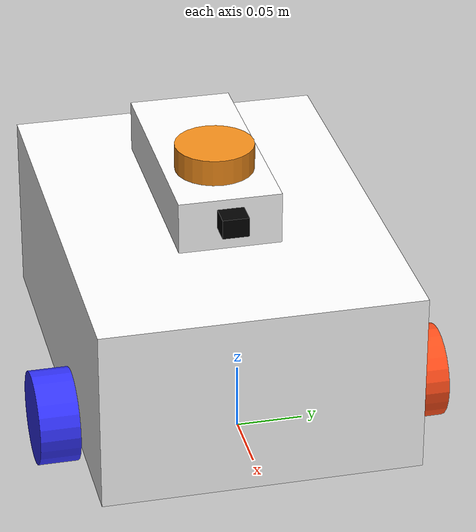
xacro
<?xml version="1.0"?>
<robot xmlns:xacro="http://www.ros.org/wiki/xacro"  name="robot">

    <!-- Args to define whether to use ROS2 control or Gazebo control -->
    <xacro:arg name="use_ros2_control" default="true"/>
    <xacro:arg name="sim_mode" default="false"/>

    <!-- Robot core -->
    <xacro:include filename="robot_core.xacro" />

    <!-- ROS2 control -->
    <xacro:if value="$(arg use_ros2_control)">
        <xacro:include filename="ros2_control.xacro" />
    </xacro:if>

    <!-- Gazebo control -->
    <xacro:unless value="$(arg use_ros2_control)">
        <xacro:include filename="gazebo_control.xacro" />
    </xacro:unless>

    <!-- Sensors -->
    <xacro:include filename="lidar.xacro" />
    <xacro:include filename="camera.xacro" />

    <!-- Frontal Face -->

</robot>

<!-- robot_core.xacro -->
<robot xmlns:xacro="http://www.ros.org/wiki/xacro" >

    <xacro:include filename="inertial_macros.xacro" />

    <!-- ========== ROBOT PARAMETERS ========== -->

    <!-- Chassis dimensions -->
    <xacro:property name="body_length" value="0.345"/> <!-- chasis_largo -->
    <xacro:property name="body_width" value="0.24"/> <!-- chasis_ancho -->
    <xacro:property name="body_height" value="0.14"/> <!-- chasis_alto -->
    <xacro:property name="body_mass" value="0.5"/> <!-- chasis_masa -->
    <xacro:property name="body_x_offset" value="0.26"/> <!-- chasis_desplazamiento_x -->

    <!-- Drive wheel properties -->
    <xacro:property name="drive_wheel_radius" value="0.035"/> <!-- rueda_radio -->
    <xacro:property name="drive_wheel_width" value="0.03"/> <!-- rueda_grosor -->
    <xacro:property name="drive_wheel_mass" value="0.1"/> <!-- rueda_masa -->
    <xacro:property name="wheel_base_width" value="0.14"/> <!-- rueda_separacion_y -->
    <xacro:property name="wheel_mount_height" value="0.028"/> <!-- rueda_altura_z -->

    <!-- Caster wheel properties -->
    <xacro:property name="caster_radius" value="0.015"/> <!-- rueda_loca_radio -->
    <xacro:property name="caster_mass" value="0.1"/> <!-- rueda_loca_masa -->
    <xacro:property name="caster_x_pos" value="0.065"/> <!-- rueda_loca_posicion_x -->
    <xacro:property name="caster_friction_coeff" value="0.001"/> <!-- rueda_loca_friccion -->

    <!-- Calculated values -->
    <xacro:property name="body_mid_x" value="${body_length/2}"/> <!-- chasis_centro_x -->
    <xacro:property name="body_mid_z" value="${body_height/2}"/> <!-- chasis_centro_z -->

    <!-- ========== MATERIALS ========== -->
    <material name="white">
        <color rgba="1 1 1 1" />
    </material>
    <material name="blue">
        <color rgba="0.2 0.2 1 1" />
    </material>
    <material name="orange">
        <color rgba="1 0.3 0.1 1" />
    </material>
    <material name="black">
        <color rgba="0 0 0 1" />
    </material>

    <!-- ========== LINKS AND JOINTS ========== -->

    <!-- BASE LINK-->
    <link name="base_link">
    </link>

    <!-- BASE FOOTPRINT LINK (Proyección Base Link en el suelo, para SLAM)-->

    <joint name="base_footprint_joint" type="fixed">
        <parent link="base_link" />
        <child link="base_footprint" />
        <origin xyz="0 0 0"/>
    </joint>

    <link name="base_footprint">
    </link>

    <!-- CHASSIS LINK-->
    <joint name="chassis_joint" type="fixed">
        <parent link="base_link" />
        <child link="chassis_link" />
        <origin xyz="-${body_x_offset} 0 0"/>
    </joint>

    <link name="chassis_link">
        <visual>
            <origin xyz="${body_mid_x} 0 ${body_mid_z}"/>
            <geometry>
                <box size="${body_length} ${body_width} ${body_height}"/>
            </geometry>
            <material name="white"/>
        </visual>
        <collision>
            <origin xyz="${body_mid_x} 0 ${body_mid_z}"/>
            <geometry>
                <box size="${body_length} ${body_width} ${body_height}"/>
            </geometry>
            <material name="white"/>
        </collision>
        <xacro:inertial_box mass="${body_mass}" x="${body_length}" y="${body_width}" z="${body_height}">
            <origin xyz="${body_mid_x} 0 ${body_mid_z}" rpy="0 0 0"/>
        </xacro:inertial_box>
    </link>

    <gazebo reference="chassis_link">
        <material>Gazebo/Orange</material>
    </gazebo>

    <!-- LEFT WHEEL LINK-->
    <joint name="left_wheel_joint" type="continuous">
        <parent link="base_link"/>
        <child link="left_wheel_link"/>
        <origin xyz="0 ${wheel_base_width} ${wheel_mount_height}" rpy="-${pi/2} 0 0"/>
        <axis xyz="0 0 1"/>
    </joint>

    <link name="left_wheel_link">
        <visual>
            <geometry>
                <cylinder radius="${drive_wheel_radius}" length="${drive_wheel_width}"/>
            </geometry>
            <material name="orange"/>
        </visual>
        <collision>
            <geometry>
                <cylinder radius="${drive_wheel_radius}" length="${drive_wheel_width}"/>
            </geometry>
            <material name="orange"/>
        </collision>
        <xacro:inertial_cylinder mass="${drive_wheel_mass}" length="${drive_wheel_width}" radius="${drive_wheel_radius}">
            <origin xyz="0 0 0" rpy="0 0 0"/>
        </xacro:inertial_cylinder>
    </link>

    <gazebo reference="left_wheel_link">
        <material>Gazebo/Blue</material>
    </gazebo>

    <!-- RIGHT WHEEL LINK-->
    <joint name="right_wheel_joint" type="continuous">
        <parent link="base_link"/>
        <child link="right_wheel_link"/>
        <origin xyz="0 -${wheel_base_width} ${wheel_mount_height}" rpy="${pi/2} 0 0"/>
        <axis xyz="0 0 -1"/>
    </joint>

    <link name="right_wheel_link">
        <visual>
            <geometry>
                <cylinder radius="${drive_wheel_radius}" length="${drive_wheel_width}"/>
            </geometry>
            <material name="blue"/>
        </visual>
        <collision>
            <geometry>
                <cylinder radius="${drive_wheel_radius}" length="${drive_wheel_width}"/>
            </geometry>
            <material name="blue"/>
        </collision>
        <xacro:inertial_cylinder mass="${drive_wheel_mass}" length="${drive_wheel_width}" radius="${drive_wheel_radius}">
            <origin xyz="0 0 0" rpy="0 0 0"/>
        </xacro:inertial_cylinder>
    </link>

    <gazebo reference="right_wheel_link">
        <material>Gazebo/Blue</material>
    </gazebo>

    <!-- CASTER WHEEL LINK-->
    <joint name="caster_wheel_joint" type="fixed">
        <parent link="chassis_link"/>
        <child link="caster_wheel_link"/>
        <origin xyz="${caster_x_pos} 0 0"/>
    </joint>

    <link name="caster_wheel_link">
        <visual>
            <geometry>
                <sphere radius="${caster_radius}"/>
            </geometry>
            <material name="black"/>
        </visual>
        <collision>
            <geometry>
                <sphere radius="${caster_radius}"/>
            </geometry>
            <material name="black"/>
        </collision>
        <xacro:inertial_sphere mass="${caster_mass}" radius="${caster_radius}">
            <origin xyz="0 0 0" rpy="0 0 0"/>
        </xacro:inertial_sphere>
    </link>

    <gazebo reference="caster_wheel_link">
        <material>Gazebo/Black</material>
        <mu1 value="${caster_friction_coeff}"/>
        <mu2 value="${caster_friction_coeff}"/>
    </gazebo>
</robot>

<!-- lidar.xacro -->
<robot xmlns:xacro="http://www.ros.org/wiki/xacro" >

    <joint name="laser_base_joint" type="fixed">
        <parent link="chassis_link"/>
        <child link="laser_base_link"/>
        <origin xyz="0.125 0 ${body_height}" rpy="0 0 0"/>
    </joint>

    <link name="laser_base_link">
        <visual>
            <origin xyz="0.025 0 0.02"/>
            <geometry>
                <box size="0.175 0.078 0.04"/>
            </geometry>
            <material name="white"/>
        </visual>
        <collision>
            <origin xyz="0.025 0 0.02"/>
            <geometry>
                <box size="0.175 0.078 0.04"/>
            </geometry>
            <material name="white"/>
        </collision>
        <xacro:inertial_box mass="0.1" x="0.175" y="0.078" z="0.04">
            <origin xyz="0 0 0" rpy="0 0 0"/>
        </xacro:inertial_box>
    </link>

    <joint name="laser_joint" type="fixed">
        <parent link="laser_base_link"/>
        <child link="laser_frame_link"/>
        <origin xyz="0.06 0 0.04" rpy="0 0 0"/>
    </joint>

    <link name="laser_frame_link">
        <visual>
            <geometry>
                <cylinder radius="0.03" length="0.04"/>
            </geometry>
        </visual>
        <collision>
            <geometry>
                <cylinder radius="0.03" length="0.04"/>
            </geometry>
        </collision>
        <xacro:inertial_cylinder mass="0.1" length="0.04" radius="0.03">
            <origin xyz="0 0 0" rpy="0 0 0"/>
        </xacro:inertial_cylinder>
    </link>

    <gazebo reference="laser_base_link">
        <material>Gazebo/Black</material>
    </gazebo>

    <gazebo reference="laser_frame_link">
        <material>Gazebo/Orange</material>
        <sensor name="laser" type="gpu_lidar">
            <pose>0 0 0 0 0 0</pose>
            <visualize>true</visualize>
            <update_rate>10</update_rate>
            <always_on>true</always_on>
            <topic>scan</topic>
            <gz_frame_id>laser_frame_link</gz_frame_id>
            <lidar>
                <scan>
                    <horizontal>
                        <samples>360</samples>
                        <resolution>1</resolution>
                        <min_angle>-3.14159</min_angle>
                        <max_angle>3.14159</max_angle>
                    </horizontal>
                </scan>
                <range>
                    <min>0.3</min>
                    <max>12.0</max>
                    <resolution>0.01</resolution>
                </range>
            </lidar>
        </sensor>
    </gazebo>

</robot>

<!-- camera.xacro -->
<robot xmlns:xacro="http://www.ros.org/wiki/xacro" >

    <joint name="camera_joint" type="fixed">
        <parent link="laser_base_link"/>
        <child link="camera_link"/>
        <origin xyz="0.12 0 0.025" rpy="0 0 0"/>
    </joint>

    <link name="camera_link">
        <visual>
            <geometry>
                <box size="0.02 0.02 0.015"/>
            </geometry>
            <material name="black"/>
        </visual>
    </link>

    <!-- No tiene forma, es solo para referenciar el frame optico de la camara, ajustando las coordenadas de ROS a las de Imagen -->
    <joint name="camera_optical_joint" type="fixed">
        <origin xyz="0 0 0" rpy="${-pi/2} 0 ${-pi/2}" />
        <parent link="camera_link" />
        <child link="camera_optical_link" />
    </joint>

    <link name="camera_optical_link">
    </link>

    <gazebo reference="camera_link">
        <material>Gazebo/Red</material>
         <sensor name="camera" type="camera">
            <pose> 0 0 0 0 0 0 </pose>
            <visualize>true</visualize>
            <update_rate>10</update_rate>
            <camera>
                <camera_info_topic>camera/camera_info</camera_info_topic>
                <horizontal_fov>1.089</horizontal_fov>
                <image>
                    <format>R8G8B8</format>
                    <width>640</width>
                    <height>480</height>
                </image>
                <clip>
                    <near>0.05</near>
                    <far>8.0</far>
                </clip>
            </camera>
            <topic>camera/image_raw</topic>
            <gz_frame_id>camera_link_optical</gz_frame_id>
        </sensor>
    </gazebo>

</robot>
